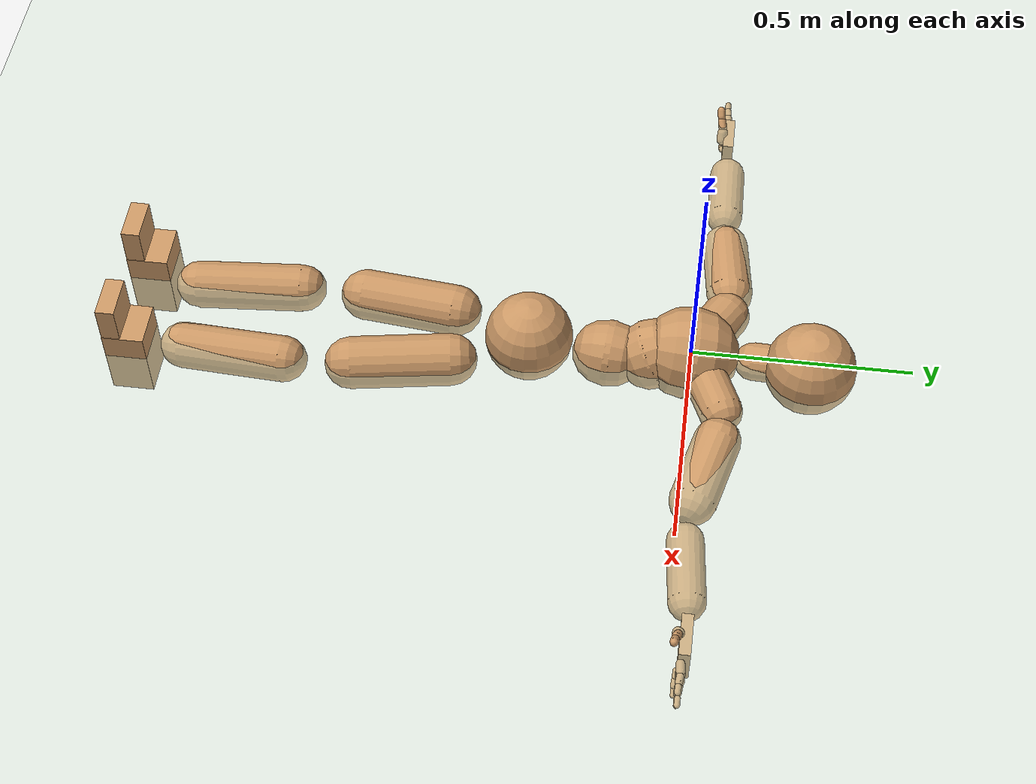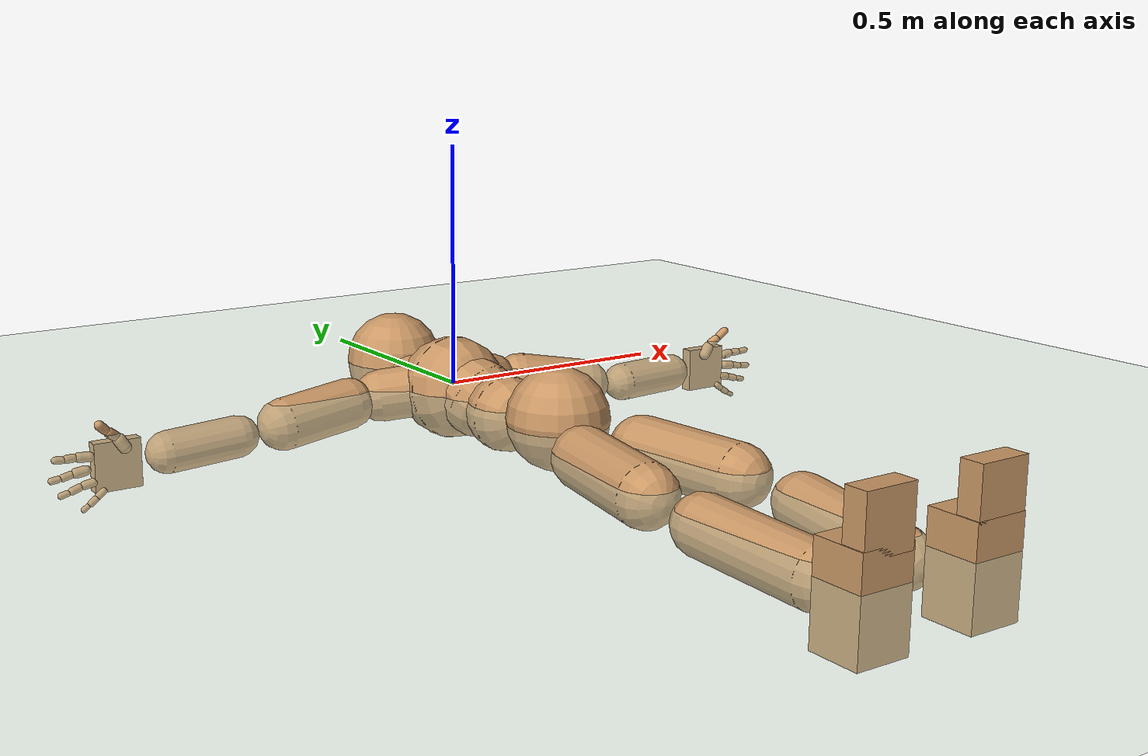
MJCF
<mujoco model="humanoid">
  <compiler coordinate="local"/>
  <default>
    <joint damping="0.0" armature="0.01" stiffness="0.0" limited="true"/>
    <geom conaffinity="1" condim="3" contype="7" margin="0.001" rgba="0.8 0.6 .4 1"/>
  </default>
  <asset>
    <texture type="skybox" builtin="gradient" rgb1=".4 .5 .6" rgb2="0 0 0" width="100" height="100"/>
    <texture builtin="flat" height="1278" mark="cross" markrgb="1 1 1" name="texgeom" random="0.01" rgb1="0.8 0.6 0.4" rgb2="0.8 0.6 0.4" type="cube" width="127"/>
    <texture builtin="checker" height="100" name="texplane" rgb1="0 0 0" rgb2="0.8 0.8 0.8" type="2d" width="100"/>
    <material name="MatPlane" reflectance="0.5" shininess="1" specular="1" texrepeat="60 60" texture="texplane"/>
    <material name="geom" texture="texgeom" texuniform="true"/>
  </asset>
  <worldbody>
    <light cutoff="100" diffuse="1 1 1" dir="-0 0 -1.3" directional="true" exponent="1" pos="0 0 1.3" specular=".1 .1 .1"/>
    <geom conaffinity="1" condim="3" name="floor" pos="0 0 0" rgba="0.8 0.9 0.8 1" size="100 100 .2" type="plane" material="MatPlane"/>
    <body name="Pelvis" pos="0.003 -0.3718 0.0077">
      <freejoint name="Pelvis"/>
      <geom type="sphere" contype="1" conaffinity="1" density="4629.6296296296305" size="0.1009" pos="0.0000 0.0000 0.0000" name="Pelvis"/>
      <body name="L_Hip" pos="0.0577 -0.0954 -0.0248">
        <joint name="L_Hip_x" type="hinge" pos="0 0 0" axis="1 0 0" user="250 2.5 1 500 10 2" armature="0.01" range="-90.0000 90.0000" damping="0" stiffness="0"/>
        <joint name="L_Hip_y" type="hinge" pos="0 0 0" axis="0 1 0" user="250 2.5 1 500 10 2" armature="0.01" range="-90.0000 90.0000" damping="0" stiffness="0"/>
        <joint name="L_Hip_z" type="hinge" pos="0 0 0" axis="0 0 1" user="250 2.5 1 500 10 2" armature="0.01" range="-90.0000 90.0000" damping="0" stiffness="0"/>
        <geom type="capsule" contype="1" conaffinity="1" density="2040.816327" fromto="0.0116 -0.0753 -0.0009 0.0464 -0.3011 -0.0038" size="0.0602" name="L_Hip"/>
        <body name="L_Knee" pos="0.058 -0.3764 -0.0047">
          <joint name="L_Knee_x" type="hinge" pos="0 0 0" axis="1 0 0" user="250 2.5 1 500 10 2" armature="0.01" range="-180.0000 180.0000" damping="0" stiffness="0"/>
          <joint name="L_Knee_y" type="hinge" pos="0 0 0" axis="0 1 0" user="250 2.5 1 500 10 2" armature="0.01" range="-5.6250 5.6250" damping="0" stiffness="0"/>
          <joint name="L_Knee_z" type="hinge" pos="0 0 0" axis="0 0 1" user="250 2.5 1 500 10 2" armature="0.01" range="-5.6250 5.6250" damping="0" stiffness="0"/>
          <geom type="capsule" contype="1" conaffinity="1" density="1234.567901" fromto="-0.0087 -0.0804 -0.0060 -0.0348 -0.3218 -0.0238" size="0.0535" name="L_Knee"/>
          <body name="L_Ankle" pos="-0.0435 -0.4022 -0.0298">
            <joint name="L_Ankle_x" type="hinge" pos="0 0 0" axis="1 0 0" user="150 2.5 1 500 10 2" armature="0.01" range="-90.0000 90.0000" damping="0" stiffness="0"/>
            <joint name="L_Ankle_y" type="hinge" pos="0 0 0" axis="0 1 0" user="150 2.5 1 500 10 2" armature="0.01" range="-90.0000 90.0000" damping="0" stiffness="0"/>
            <joint name="L_Ankle_z" type="hinge" pos="0 0 0" axis="0 0 1" user="150 2.5 1 500 10 2" armature="0.01" range="-90.0000 90.0000" damping="0" stiffness="0"/>
            <geom type="box" density="449.456054" pos="0.0420 -0.0290 0.0239" size="0.0513 0.0475 0.088" quat="1.0000 0.0000 0.0000 0.0000" name="L_Ankle"/>
            <body name="L_Toe" pos="0.0485 -0.0587 0.1214">
              <joint name="L_Toe_x" type="hinge" pos="0 0 0" axis="1 0 0" user="150 1 1 500 1 1" armature="0.01" range="-90.0000 90.0000" damping="0" stiffness="0"/>
              <joint name="L_Toe_y" type="hinge" pos="0 0 0" axis="0 1 0" user="150 1 1 500 1 1" armature="0.01" range="-45.0000 45.0000" damping="0" stiffness="0"/>
              <joint name="L_Toe_z" type="hinge" pos="0 0 0" axis="0 0 1" user="150 1 1 500 1 1" armature="0.01" range="-45.0000 45.0000" damping="0" stiffness="0"/>
              <geom type="box" density="422.237968" pos="-0.0065 0.0034 0.0266" size="0.0494 0.0212 0.0514" quat="1.0000 0.0000 0.0000 0.0000" name="L_Toe"/>
            </body>
          </body>
        </body>
      </body>
      <body name="R_Hip" pos="-0.0625 -0.1076 -0.0192">
        <joint name="R_Hip_x" type="hinge" pos="0 0 0" axis="1 0 0" user="250 2.5 1 500 10 2" armature="0.01" range="-90.0000 90.0000" damping="0" stiffness="0"/>
        <joint name="R_Hip_y" type="hinge" pos="0 0 0" axis="0 1 0" user="250 2.5 1 500 10 2" armature="0.01" range="-90.0000 90.0000" damping="0" stiffness="0"/>
        <joint name="R_Hip_z" type="hinge" pos="0 0 0" axis="0 0 1" user="250 2.5 1 500 10 2" armature="0.01" range="-90.0000 90.0000" damping="0" stiffness="0"/>
        <geom type="capsule" contype="1" conaffinity="1" density="2040.816327" fromto="-0.0095 -0.0718 -0.0026 -0.0379 -0.2871 -0.0103" size="0.0595" name="R_Hip"/>
        <body name="R_Knee" pos="-0.0474 -0.3589 -0.0129">
          <joint name="R_Knee_x" type="hinge" pos="0 0 0" axis="1 0 0" user="250 2.5 1 500 10 2" armature="0.01" range="-180.0000 180.0000" damping="0" stiffness="0"/>
          <joint name="R_Knee_y" type="hinge" pos="0 0 0" axis="0 1 0" user="250 2.5 1 500 10 2" armature="0.01" range="-5.6250 5.6250" damping="0" stiffness="0"/>
          <joint name="R_Knee_z" type="hinge" pos="0 0 0" axis="0 0 1" user="250 2.5 1 500 10 2" armature="0.01" range="-5.6250 5.6250" damping="0" stiffness="0"/>
          <geom type="capsule" contype="1" conaffinity="1" density="1234.567901" fromto="0.0030 -0.0820 -0.0036 0.0119 -0.3281 -0.0143" size="0.0551" name="R_Knee"/>
          <body name="R_Ankle" pos="0.0149 -0.4101 -0.0179">
            <joint name="R_Ankle_x" type="hinge" pos="0 0 0" axis="1 0 0" user="150 1 1 500 10 2" armature="0.01" range="-90.0000 90.0000" damping="0" stiffness="0"/>
            <joint name="R_Ankle_y" type="hinge" pos="0 0 0" axis="0 1 0" user="150 1 1 500 10 2" armature="0.01" range="-90.0000 90.0000" damping="0" stiffness="0"/>
            <joint name="R_Ankle_z" type="hinge" pos="0 0 0" axis="0 0 1" user="150 1 1 500 10 2" armature="0.01" range="-90.0000 90.0000" damping="0" stiffness="0"/>
            <geom type="box" density="449.457715" pos="-0.0250 -0.0265 0.0146" size="0.0513 0.0475 0.088" quat="1.0000 0.0000 0.0000 0.0000" name="R_Ankle"/>
            <body name="R_Toe" pos="-0.0397 -0.059 0.1223">
              <joint name="R_Toe_x" type="hinge" pos="0 0 0" axis="1 0 0" user="150 1 1 500 1 1" armature="0.01" range="-90.0000 90.0000" damping="0" stiffness="0"/>
              <joint name="R_Toe_y" type="hinge" pos="0 0 0" axis="0 1 0" user="150 1 1 500 1 1" armature="0.01" range="-45.0000 45.0000" damping="0" stiffness="0"/>
              <joint name="R_Toe_z" type="hinge" pos="0 0 0" axis="0 0 1" user="150 1 1 500 1 1" armature="0.01" range="-45.0000 45.0000" damping="0" stiffness="0"/>
              <geom type="box" density="422.240171" pos="0.0147 0.0062 0.0164" size="0.0494 0.0212 0.0514" quat="1.0000 0.0000 0.0000 0.0000" name="R_Toe"/>
            </body>
          </body>
        </body>
      </body>
      <body name="Torso" pos="-0.0029 0.1133 -0.0287">
        <joint name="Torso_x" type="hinge" pos="0 0 0" axis="1 0 0" user="500 5 1 500 10 2" armature="0.01" range="-60.0000 60.0000" damping="0" stiffness="0"/>
        <joint name="Torso_y" type="hinge" pos="0 0 0" axis="0 1 0" user="500 5 1 500 10 2" armature="0.01" range="-60.0000 60.0000" damping="0" stiffness="0"/>
        <joint name="Torso_z" type="hinge" pos="0 0 0" axis="0 0 1" user="500 5 1 500 10 2" armature="0.01" range="-60.0000 60.0000" damping="0" stiffness="0"/>
        <geom type="capsule" contype="1" conaffinity="1" density="2040.816327" fromto="0.0048 0.0637 -0.0026 0.0059 0.0778 -0.0031" size="0.0764" name="Torso"/>
        <body name="Spine" pos="0.0106 0.1415 -0.0057">
          <joint name="Spine_x" type="hinge" pos="0 0 0" axis="1 0 0" user="500 5 1 500 10 2" armature="0.01" range="-60.0000 60.0000" damping="0" stiffness="0"/>
          <joint name="Spine_y" type="hinge" pos="0 0 0" axis="0 1 0" user="500 5 1 500 10 2" armature="0.01" range="-60.0000 60.0000" damping="0" stiffness="0"/>
          <joint name="Spine_z" type="hinge" pos="0 0 0" axis="0 0 1" user="500 5 1 500 10 2" armature="0.01" range="-60.0000 60.0000" damping="0" stiffness="0"/>
          <geom type="capsule" contype="1" conaffinity="1" density="2040.816327" fromto="-0.0053 0.0255 0.0126 -0.0065 0.0312 0.0154" size="0.0804" name="Spine"/>
          <body name="Chest" pos="-0.0119 0.0567 0.028">
            <joint name="Chest_x" type="hinge" pos="0 0 0" axis="1 0 0" user="500 5 1 500 10 2" armature="0.01" range="-60.0000 60.0000" damping="0" stiffness="0"/>
            <joint name="Chest_y" type="hinge" pos="0 0 0" axis="0 1 0" user="500 5 1 500 10 2" armature="0.01" range="-60.0000 60.0000" damping="0" stiffness="0"/>
            <joint name="Chest_z" type="hinge" pos="0 0 0" axis="0 0 1" user="500 5 1 500 10 2" armature="0.01" range="-60.0000 60.0000" damping="0" stiffness="0"/>
            <geom type="capsule" contype="1" conaffinity="1" density="2040.816327" fromto="-0.0022 0.0519 -0.0069 -0.0027 0.0635 -0.0084" size="0.1061" name="Chest"/>
            <body name="Neck" pos="-0.0129 0.1708 -0.0284">
              <joint name="Neck_x" type="hinge" pos="0 0 0" axis="1 0 0" user="150 1 1 250 50 4" armature="0.01" range="-180.0000 180.0000" damping="0" stiffness="0"/>
              <joint name="Neck_y" type="hinge" pos="0 0 0" axis="0 1 0" user="150 1 1 250 50 4" armature="0.01" range="-180.0000 180.0000" damping="0" stiffness="0"/>
              <joint name="Neck_z" type="hinge" pos="0 0 0" axis="0 0 1" user="150 1 1 250 50 4" armature="0.01" range="-180.0000 180.0000" damping="0" stiffness="0"/>
              <geom type="capsule" contype="1" conaffinity="1" density="1000" fromto="0.0052 0.0321 0.0049 0.0209 0.1283 0.0196" size="0.0437" name="Neck"/>
              <body name="Head" pos="0.0261 0.1603 0.0245">
                <joint name="Head_x" type="hinge" pos="0 0 0" axis="1 0 0" user="150 1 1 250 50 4" armature="0.01" range="-90.0000 90.0000" damping="0" stiffness="0"/>
                <joint name="Head_y" type="hinge" pos="0 0 0" axis="0 1 0" user="150 1 1 250 50 4" armature="0.01" range="-90.0000 90.0000" damping="0" stiffness="0"/>
                <joint name="Head_z" type="hinge" pos="0 0 0" axis="0 0 1" user="150 1 1 250 50 4" armature="0.01" range="-90.0000 90.0000" damping="0" stiffness="0"/>
                <geom type="sphere" contype="1" conaffinity="1" density="1000" size="0.1042" pos="0.0000 0.0000 0.0000" name="Head"/>
              </body>
            </body>
            <body name="L_Thorax" pos="0.0472 0.0881 -0.0054">
              <joint name="L_Thorax_x" type="hinge" pos="0 0 0" axis="1 0 0" user="200 2 1 500 50 4" armature="0.01" range="-180.0000 180.0000" damping="0" stiffness="0"/>
              <joint name="L_Thorax_y" type="hinge" pos="0 0 0" axis="0 1 0" user="200 2 1 500 50 4" armature="0.01" range="-180.0000 180.0000" damping="0" stiffness="0"/>
              <joint name="L_Thorax_z" type="hinge" pos="0 0 0" axis="0 0 1" user="200 2 1 500 50 4" armature="0.01" range="-180.0000 180.0000" damping="0" stiffness="0"/>
              <geom type="capsule" contype="1" conaffinity="1" density="1000" fromto="0.0246 0.0122 -0.0037 0.0982 0.0489 -0.0150" size="0.05" name="L_Thorax"/>
              <body name="L_Shoulder" pos="0.1228 0.0611 -0.0187">
                <joint name="L_Shoulder_x" type="hinge" pos="0 0 0" axis="1 0 0" user="200 2 1 500 50 4" armature="0.01" range="-180.0000 180.0000" damping="0" stiffness="0"/>
                <joint name="L_Shoulder_y" type="hinge" pos="0 0 0" axis="0 1 0" user="200 2 1 500 50 4" armature="0.01" range="-180.0000 180.0000" damping="0" stiffness="0"/>
                <joint name="L_Shoulder_z" type="hinge" pos="0 0 0" axis="0 0 1" user="200 2 1 500 50 4" armature="0.01" range="-180.0000 180.0000" damping="0" stiffness="0"/>
                <geom type="capsule" contype="1" conaffinity="1" density="1000" fromto="0.0497 -0.0138 -0.0084 0.1988 -0.0553 -0.0337" size="0.0536" name="L_Shoulder"/>
                <body name="L_Elbow" pos="0.2485 -0.0691 -0.0421">
                  <joint name="L_Elbow_x" type="hinge" pos="0 0 0" axis="1 0 0" user="150 1 1 150 10 2" armature="0.01" range="-720.0000 720.0000" damping="0" stiffness="0"/>
                  <joint name="L_Elbow_y" type="hinge" pos="0 0 0" axis="0 1 0" user="150 1 1 150 10 2" armature="0.01" range="-720.0000 720.0000" damping="0" stiffness="0"/>
                  <joint name="L_Elbow_z" type="hinge" pos="0 0 0" axis="0 0 1" user="150 1 1 150 10 2" armature="0.01" range="-720.0000 720.0000" damping="0" stiffness="0"/>
                  <geom type="capsule" contype="1" conaffinity="1" density="1000" fromto="0.0505 0.0050 -0.0000 0.2020 0.0199 -0.0002" size="0.0417" name="L_Elbow"/>
                  <body name="L_Wrist" pos="0.2526 0.0248 -0.0002">
                    <joint name="L_Wrist_x" type="hinge" pos="0 0 0" axis="1 0 0" user="100 1 1 150 1 1" armature="0.01" range="-180.0000 180.0000" damping="0" stiffness="0"/>
                    <joint name="L_Wrist_y" type="hinge" pos="0 0 0" axis="0 1 0" user="100 1 1 150 1 1" armature="0.01" range="-180.0000 180.0000" damping="0" stiffness="0"/>
                    <joint name="L_Wrist_z" type="hinge" pos="0 0 0" axis="0 0 1" user="100 1 1 150 1 1" armature="0.01" range="-180.0000 180.0000" damping="0" stiffness="0"/>
                    <geom type="box" density="1217.553962" pos="0.0533 -0.0011 -0.0027" size="0.0492 0.0127 0.0481" quat="1.0000 0.0000 0.0000 0.0000" name="L_Wrist"/>
                    <body name="L_Index1" pos="0.1036 -0.0081 0.0207">
                      <joint name="L_Index1_x" type="hinge" pos="0 0 0" axis="1 0 0" user="100 10 1 150" armature="0.01" range="-180.0000 180.0000" damping="0" stiffness="0"/>
                      <joint name="L_Index1_y" type="hinge" pos="0 0 0" axis="0 1 0" user="100 10 1 150" armature="0.01" range="-180.0000 180.0000" damping="0" stiffness="0"/>
                      <joint name="L_Index1_z" type="hinge" pos="0 0 0" axis="0 0 1" user="100 10 1 150" armature="0.01" range="-180.0000 180.0000" damping="0" stiffness="0"/>
                      <geom type="capsule" contype="1" conaffinity="1" density="1000" fromto="0.0065 0.0005 0.0006 0.0261 0.0019 0.0024" size="0.0096" name="L_Index1"/>
                      <body name="L_Index2" pos="0.0326 0.0024 0.003">
                        <joint name="L_Index2_x" type="hinge" pos="0 0 0" axis="1 0 0" user="100 10 1 150" armature="0.01" range="-180.0000 180.0000" damping="0" stiffness="0"/>
                        <joint name="L_Index2_y" type="hinge" pos="0 0 0" axis="0 1 0" user="100 10 1 150" armature="0.01" range="-180.0000 180.0000" damping="0" stiffness="0"/>
                        <joint name="L_Index2_z" type="hinge" pos="0 0 0" axis="0 0 1" user="100 10 1 150" armature="0.01" range="-180.0000 180.0000" damping="0" stiffness="0"/>
                        <geom type="capsule" contype="1" conaffinity="1" density="1000" fromto="0.0046 -0.0005 -0.0000 0.0184 -0.0020 -0.0001" size="0.0079" name="L_Index2"/>
                        <body name="L_Index3" pos="0.0229 -0.0025 -0.0002">
                          <joint name="L_Index3_x" type="hinge" pos="0 0 0" axis="1 0 0" user="100 10 1 150" armature="0.01" range="-180.0000 180.0000" damping="0" stiffness="0"/>
                          <joint name="L_Index3_y" type="hinge" pos="0 0 0" axis="0 1 0" user="100 10 1 150" armature="0.01" range="-180.0000 180.0000" damping="0" stiffness="0"/>
                          <joint name="L_Index3_z" type="hinge" pos="0 0 0" axis="0 0 1" user="100 10 1 150" armature="0.01" range="-180.0000 180.0000" damping="0" stiffness="0"/>
                          <geom type="capsule" contype="1" conaffinity="1" density="1000" fromto="0.0050 -0.0001 0.0004 0.0200 -0.0004 0.0015" size="0.0067" name="L_Index3"/>
                        </body>
                      </body>
                    </body>
                    <body name="L_Middle1" pos="0.1113 -0.0057 -0.0036">
                      <joint name="L_Middle1_x" type="hinge" pos="0 0 0" axis="1 0 0" user="100 10 1 150" armature="0.01" range="-180.0000 180.0000" damping="0" stiffness="0"/>
                      <joint name="L_Middle1_y" type="hinge" pos="0 0 0" axis="0 1 0" user="100 10 1 150" armature="0.01" range="-180.0000 180.0000" damping="0" stiffness="0"/>
                      <joint name="L_Middle1_z" type="hinge" pos="0 0 0" axis="0 0 1" user="100 10 1 150" armature="0.01" range="-180.0000 180.0000" damping="0" stiffness="0"/>
                      <geom type="capsule" contype="1" conaffinity="1" density="1000" fromto="0.0063 0.0002 -0.0008 0.0251 0.0006 -0.0033" size="0.0098" name="L_Middle1"/>
                      <body name="L_Middle2" pos="0.0313 0.0008 -0.0041">
                        <joint name="L_Middle2_x" type="hinge" pos="0 0 0" axis="1 0 0" user="100 10 1 150" armature="0.01" range="-180.0000 180.0000" damping="0" stiffness="0"/>
                        <joint name="L_Middle2_y" type="hinge" pos="0 0 0" axis="0 1 0" user="100 10 1 150" armature="0.01" range="-180.0000 180.0000" damping="0" stiffness="0"/>
                        <joint name="L_Middle2_z" type="hinge" pos="0 0 0" axis="0 0 1" user="100 10 1 150" armature="0.01" range="-180.0000 180.0000" damping="0" stiffness="0"/>
                        <geom type="capsule" contype="1" conaffinity="1" density="1000" fromto="0.0048 -0.0004 -0.0009 0.0192 -0.0017 -0.0034" size="0.0073" name="L_Middle2"/>
                        <body name="L_Middle3" pos="0.024 -0.0022 -0.0043">
                          <joint name="L_Middle3_x" type="hinge" pos="0 0 0" axis="1 0 0" user="100 10 1 150" armature="0.01" range="-180.0000 180.0000" damping="0" stiffness="0"/>
                          <joint name="L_Middle3_y" type="hinge" pos="0 0 0" axis="0 1 0" user="100 10 1 150" armature="0.01" range="-180.0000 180.0000" damping="0" stiffness="0"/>
                          <joint name="L_Middle3_z" type="hinge" pos="0 0 0" axis="0 0 1" user="100 10 1 150" armature="0.01" range="-180.0000 180.0000" damping="0" stiffness="0"/>
                          <geom type="capsule" contype="1" conaffinity="1" density="1000" fromto="0.0052 -0.0000 -0.0005 0.0208 -0.0001 -0.0018" size="0.0064" name="L_Middle3"/>
                        </body>
                      </body>
                    </body>
                    <body name="L_Pinky1" pos="0.0854 -0.014 -0.0453">
                      <joint name="L_Pinky1_x" type="hinge" pos="0 0 0" axis="1 0 0" user="100 10 1 150" armature="0.01" range="-180.0000 180.0000" damping="0" stiffness="0"/>
                      <joint name="L_Pinky1_y" type="hinge" pos="0 0 0" axis="0 1 0" user="100 10 1 150" armature="0.01" range="-180.0000 180.0000" damping="0" stiffness="0"/>
                      <joint name="L_Pinky1_z" type="hinge" pos="0 0 0" axis="0 0 1" user="100 10 1 150" armature="0.01" range="-180.0000 180.0000" damping="0" stiffness="0"/>
                      <geom type="capsule" contype="1" conaffinity="1" density="1000" fromto="0.0032 -0.0003 -0.0025 0.0130 -0.0010 -0.0099" size="0.007" name="L_Pinky1"/>
                      <body name="L_Pinky2" pos="0.0162 -0.0013 -0.0124">
                        <joint name="L_Pinky2_x" type="hinge" pos="0 0 0" axis="1 0 0" user="100 10 1 150" armature="0.01" range="-180.0000 180.0000" damping="0" stiffness="0"/>
                        <joint name="L_Pinky2_y" type="hinge" pos="0 0 0" axis="0 1 0" user="100 10 1 150" armature="0.01" range="-180.0000 180.0000" damping="0" stiffness="0"/>
                        <joint name="L_Pinky2_z" type="hinge" pos="0 0 0" axis="0 0 1" user="100 10 1 150" armature="0.01" range="-180.0000 180.0000" damping="0" stiffness="0"/>
                        <geom type="capsule" contype="1" conaffinity="1" density="1000" fromto="0.0032 -0.0004 -0.0023 0.0129 -0.0015 -0.0091" size="0.0068" name="L_Pinky2"/>
                        <body name="L_Pinky3" pos="0.0161 -0.0019 -0.0114">
                          <joint name="L_Pinky3_x" type="hinge" pos="0 0 0" axis="1 0 0" user="100 10 1 150" armature="0.01" range="-180.0000 180.0000" damping="0" stiffness="0"/>
                          <joint name="L_Pinky3_y" type="hinge" pos="0 0 0" axis="0 1 0" user="100 10 1 150" armature="0.01" range="-180.0000 180.0000" damping="0" stiffness="0"/>
                          <joint name="L_Pinky3_z" type="hinge" pos="0 0 0" axis="0 0 1" user="100 10 1 150" armature="0.01" range="-180.0000 180.0000" damping="0" stiffness="0"/>
                          <geom type="capsule" contype="1" conaffinity="1" density="1000" fromto="0.0036 0.0000 -0.0019 0.0145 0.0001 -0.0075" size="0.0051" name="L_Pinky3"/>
                        </body>
                      </body>
                    </body>
                    <body name="L_Ring1" pos="0.0992 -0.0086 -0.0281">
                      <joint name="L_Ring1_x" type="hinge" pos="0 0 0" axis="1 0 0" user="100 10 1 150" armature="0.01" range="-180.0000 180.0000" damping="0" stiffness="0"/>
                      <joint name="L_Ring1_y" type="hinge" pos="0 0 0" axis="0 1 0" user="100 10 1 150" armature="0.01" range="-180.0000 180.0000" damping="0" stiffness="0"/>
                      <joint name="L_Ring1_z" type="hinge" pos="0 0 0" axis="0 0 1" user="100 10 1 150" armature="0.01" range="-180.0000 180.0000" damping="0" stiffness="0"/>
                      <geom type="capsule" contype="1" conaffinity="1" density="1000" fromto="0.0058 0.0003 -0.0011 0.0231 0.0012 -0.0043" size="0.0083" name="L_Ring1"/>
                      <body name="L_Ring2" pos="0.0289 0.0015 -0.0054">
                        <joint name="L_Ring2_x" type="hinge" pos="0 0 0" axis="1 0 0" user="100 10 1 150" armature="0.01" range="-180.0000 180.0000" damping="0" stiffness="0"/>
                        <joint name="L_Ring2_y" type="hinge" pos="0 0 0" axis="0 1 0" user="100 10 1 150" armature="0.01" range="-180.0000 180.0000" damping="0" stiffness="0"/>
                        <joint name="L_Ring2_z" type="hinge" pos="0 0 0" axis="0 0 1" user="100 10 1 150" armature="0.01" range="-180.0000 180.0000" damping="0" stiffness="0"/>
                        <geom type="capsule" contype="1" conaffinity="1" density="1000" fromto="0.0047 -0.0003 -0.0015 0.0187 -0.0013 -0.0058" size="0.0077" name="L_Ring2"/>
                        <body name="L_Ring3" pos="0.0234 -0.0016 -0.0073">
                          <joint name="L_Ring3_x" type="hinge" pos="0 0 0" axis="1 0 0" user="100 10 1 150" armature="0.01" range="-180.0000 180.0000" damping="0" stiffness="0"/>
                          <joint name="L_Ring3_y" type="hinge" pos="0 0 0" axis="0 1 0" user="100 10 1 150" armature="0.01" range="-180.0000 180.0000" damping="0" stiffness="0"/>
                          <joint name="L_Ring3_z" type="hinge" pos="0 0 0" axis="0 0 1" user="100 10 1 150" armature="0.01" range="-180.0000 180.0000" damping="0" stiffness="0"/>
                          <geom type="capsule" contype="1" conaffinity="1" density="1000" fromto="0.0051 0.0001 -0.0011 0.0203 0.0003 -0.0042" size="0.006" name="L_Ring3"/>
                        </body>
                      </body>
                    </body>
                    <body name="L_Thumb1" pos="0.0408 -0.0183 0.0274">
                      <joint name="L_Thumb1_x" type="hinge" pos="0 0 0" axis="1 0 0" user="100 10 1 150" armature="0.01" range="-180.0000 180.0000" damping="0" stiffness="0"/>
                      <joint name="L_Thumb1_y" type="hinge" pos="0 0 0" axis="0 1 0" user="100 10 1 150" armature="0.01" range="-180.0000 180.0000" damping="0" stiffness="0"/>
                      <joint name="L_Thumb1_z" type="hinge" pos="0 0 0" axis="0 0 1" user="100 10 1 150" armature="0.01" range="-180.0000 180.0000" damping="0" stiffness="0"/>
                      <geom type="capsule" contype="1" conaffinity="1" density="1000" fromto="0.0035 0.0002 0.0052 0.0138 0.0010 0.0208" size="0.0125" name="L_Thumb1"/>
                      <body name="L_Thumb2" pos="0.0173 0.0012 0.026">
                        <joint name="L_Thumb2_x" type="hinge" pos="0 0 0" axis="1 0 0" user="100 10 1 150" armature="0.01" range="-180.0000 180.0000" damping="0" stiffness="0"/>
                        <joint name="L_Thumb2_y" type="hinge" pos="0 0 0" axis="0 1 0" user="100 10 1 150" armature="0.01" range="-180.0000 180.0000" damping="0" stiffness="0"/>
                        <joint name="L_Thumb2_z" type="hinge" pos="0 0 0" axis="0 0 1" user="100 10 1 150" armature="0.01" range="-180.0000 180.0000" damping="0" stiffness="0"/>
                        <geom type="capsule" contype="1" conaffinity="1" density="1000" fromto="0.0042 -0.0011 0.0032 0.0168 -0.0043 0.0128" size="0.01" name="L_Thumb2"/>
                        <body name="L_Thumb3" pos="0.0209 -0.0054 0.0159">
                          <joint name="L_Thumb3_x" type="hinge" pos="0 0 0" axis="1 0 0" user="100 10 1 150" armature="0.01" range="-180.0000 180.0000" damping="0" stiffness="0"/>
                          <joint name="L_Thumb3_y" type="hinge" pos="0 0 0" axis="0 1 0" user="100 10 1 150" armature="0.01" range="-180.0000 180.0000" damping="0" stiffness="0"/>
                          <joint name="L_Thumb3_z" type="hinge" pos="0 0 0" axis="0 0 1" user="100 10 1 150" armature="0.01" range="-180.0000 180.0000" damping="0" stiffness="0"/>
                          <geom type="capsule" contype="1" conaffinity="1" density="1000" fromto="0.0046 -0.0007 0.0036 0.0184 -0.0027 0.0144" size="0.0091" name="L_Thumb3"/>
                        </body>
                      </body>
                    </body>
                  </body>
                </body>
              </body>
            </body>
            <body name="R_Thorax" pos="-0.0492 0.0874 -0.0119">
              <joint name="R_Thorax_x" type="hinge" pos="0 0 0" axis="1 0 0" user="200 2 1 150 10 2" armature="0.01" range="-180.0000 180.0000" damping="0" stiffness="0"/>
              <joint name="R_Thorax_y" type="hinge" pos="0 0 0" axis="0 1 0" user="200 2 1 150 10 2" armature="0.01" range="-180.0000 180.0000" damping="0" stiffness="0"/>
              <joint name="R_Thorax_z" type="hinge" pos="0 0 0" axis="0 0 1" user="200 2 1 150 10 2" armature="0.01" range="-180.0000 180.0000" damping="0" stiffness="0"/>
              <geom type="capsule" contype="1" conaffinity="1" density="1000" fromto="-0.0212 0.0112 -0.0030 -0.0848 0.0447 -0.0122" size="0.055" name="R_Thorax"/>
              <body name="R_Shoulder" pos="-0.106 0.0559 -0.0152">
                <joint name="R_Shoulder_x" type="hinge" pos="0 0 0" axis="1 0 0" user="200 2 1 250 10 2" armature="0.01" range="-180.0000 180.0000" damping="0" stiffness="0"/>
                <joint name="R_Shoulder_y" type="hinge" pos="0 0 0" axis="0 1 0" user="200 2 1 250 10 2" armature="0.01" range="-180.0000 180.0000" damping="0" stiffness="0"/>
                <joint name="R_Shoulder_z" type="hinge" pos="0 0 0" axis="0 0 1" user="200 2 1 250 10 2" armature="0.01" range="-180.0000 180.0000" damping="0" stiffness="0"/>
                <geom type="capsule" contype="1" conaffinity="1" density="1000" fromto="-0.0531 -0.0063 -0.0053 -0.2125 -0.0251 -0.0212" size="0.0535" name="R_Shoulder"/>
                <body name="R_Elbow" pos="-0.2656 -0.0314 -0.0264">
                  <joint name="R_Elbow_x" type="hinge" pos="0 0 0" axis="1 0 0" user="150 1 1 150 10 2" armature="0.01" range="-720.0000 720.0000" damping="0" stiffness="0"/>
                  <joint name="R_Elbow_y" type="hinge" pos="0 0 0" axis="0 1 0" user="150 1 1 150 10 2" armature="0.01" range="-720.0000 720.0000" damping="0" stiffness="0"/>
                  <joint name="R_Elbow_z" type="hinge" pos="0 0 0" axis="0 0 1" user="150 1 1 150 10 2" armature="0.01" range="-720.0000 720.0000" damping="0" stiffness="0"/>
                  <geom type="capsule" contype="1" conaffinity="1" density="1000" fromto="-0.0500 -0.0008 -0.0026 -0.1998 -0.0031 -0.0104" size="0.042" name="R_Elbow"/>
                  <body name="R_Wrist" pos="-0.2498 -0.0038 -0.013">
                    <joint name="R_Wrist_x" type="hinge" pos="0 0 0" axis="1 0 0" user="100 1 1 150 1 1" armature="0.01" range="-180.0000 180.0000" damping="0" stiffness="0"/>
                    <joint name="R_Wrist_y" type="hinge" pos="0 0 0" axis="0 1 0" user="100 1 1 150 1 1" armature="0.01" range="-180.0000 180.0000" damping="0" stiffness="0"/>
                    <joint name="R_Wrist_z" type="hinge" pos="0 0 0" axis="0 0 1" user="100 1 1 150 1 1" armature="0.01" range="-180.0000 180.0000" damping="0" stiffness="0"/>
                    <geom type="box" density="1244.795259" pos="-0.0545 -0.0043 -0.0026" size="0.0464 0.0127 0.0481" quat="1.0000 0.0000 0.0000 0.0000" name="R_Wrist"/>
                    <body name="R_Index1" pos="-0.1016 -0.0113 0.0209">
                      <joint name="R_Index1_x" type="hinge" pos="0 0 0" axis="1 0 0" user="100 10 1 150" armature="0.01" range="-180.0000 180.0000" damping="0" stiffness="0"/>
                      <joint name="R_Index1_y" type="hinge" pos="0 0 0" axis="0 1 0" user="100 10 1 150" armature="0.01" range="-180.0000 180.0000" damping="0" stiffness="0"/>
                      <joint name="R_Index1_z" type="hinge" pos="0 0 0" axis="0 0 1" user="100 10 1 150" armature="0.01" range="-180.0000 180.0000" damping="0" stiffness="0"/>
                      <geom type="capsule" contype="1" conaffinity="1" density="1000" fromto="-0.0065 0.0005 0.0006 -0.0261 0.0019 0.0024" size="0.0096" name="R_Index1"/>
                      <body name="R_Index2" pos="-0.0326 0.0024 0.003">
                        <joint name="R_Index2_x" type="hinge" pos="0 0 0" axis="1 0 0" user="100 10 1 150" armature="0.01" range="-180.0000 180.0000" damping="0" stiffness="0"/>
                        <joint name="R_Index2_y" type="hinge" pos="0 0 0" axis="0 1 0" user="100 10 1 150" armature="0.01" range="-180.0000 180.0000" damping="0" stiffness="0"/>
                        <joint name="R_Index2_z" type="hinge" pos="0 0 0" axis="0 0 1" user="100 10 1 150" armature="0.01" range="-180.0000 180.0000" damping="0" stiffness="0"/>
                        <geom type="capsule" contype="1" conaffinity="1" density="1000" fromto="-0.0046 -0.0005 -0.0000 -0.0184 -0.0020 -0.0001" size="0.0079" name="R_Index2"/>
                        <body name="R_Index3" pos="-0.0229 -0.0025 -0.0002">
                          <joint name="R_Index3_x" type="hinge" pos="0 0 0" axis="1 0 0" user="100 10 1 150" armature="0.01" range="-180.0000 180.0000" damping="0" stiffness="0"/>
                          <joint name="R_Index3_y" type="hinge" pos="0 0 0" axis="0 1 0" user="100 10 1 150" armature="0.01" range="-180.0000 180.0000" damping="0" stiffness="0"/>
                          <joint name="R_Index3_z" type="hinge" pos="0 0 0" axis="0 0 1" user="100 10 1 150" armature="0.01" range="-180.0000 180.0000" damping="0" stiffness="0"/>
                          <geom type="capsule" contype="1" conaffinity="1" density="1000" fromto="-0.0042 -0.0001 0.0004 -0.0168 -0.0004 0.0015" size="0.007" name="R_Index3"/>
                        </body>
                      </body>
                    </body>
                    <body name="R_Middle1" pos="-0.1094 -0.0089 -0.0035">
                      <joint name="R_Middle1_x" type="hinge" pos="0 0 0" axis="1 0 0" user="100 10 1 150" armature="0.01" range="-180.0000 180.0000" damping="0" stiffness="0"/>
                      <joint name="R_Middle1_y" type="hinge" pos="0 0 0" axis="0 1 0" user="100 10 1 150" armature="0.01" range="-180.0000 180.0000" damping="0" stiffness="0"/>
                      <joint name="R_Middle1_z" type="hinge" pos="0 0 0" axis="0 0 1" user="100 10 1 150" armature="0.01" range="-180.0000 180.0000" damping="0" stiffness="0"/>
                      <geom type="capsule" contype="1" conaffinity="1" density="1000" fromto="-0.0063 0.0002 -0.0008 -0.0251 0.0006 -0.0033" size="0.0098" name="R_Middle1"/>
                      <body name="R_Middle2" pos="-0.0313 0.0008 -0.0041">
                        <joint name="R_Middle2_x" type="hinge" pos="0 0 0" axis="1 0 0" user="100 10 1 150" armature="0.01" range="-180.0000 180.0000" damping="0" stiffness="0"/>
                        <joint name="R_Middle2_y" type="hinge" pos="0 0 0" axis="0 1 0" user="100 10 1 150" armature="0.01" range="-180.0000 180.0000" damping="0" stiffness="0"/>
                        <joint name="R_Middle2_z" type="hinge" pos="0 0 0" axis="0 0 1" user="100 10 1 150" armature="0.01" range="-180.0000 180.0000" damping="0" stiffness="0"/>
                        <geom type="capsule" contype="1" conaffinity="1" density="1000" fromto="-0.0048 -0.0004 -0.0009 -0.0192 -0.0017 -0.0034" size="0.0073" name="R_Middle2"/>
                        <body name="R_Middle3" pos="-0.024 -0.0022 -0.0043">
                          <joint name="R_Middle3_x" type="hinge" pos="0 0 0" axis="1 0 0" user="100 10 1 150" armature="0.01" range="-180.0000 180.0000" damping="0" stiffness="0"/>
                          <joint name="R_Middle3_y" type="hinge" pos="0 0 0" axis="0 1 0" user="100 10 1 150" armature="0.01" range="-180.0000 180.0000" damping="0" stiffness="0"/>
                          <joint name="R_Middle3_z" type="hinge" pos="0 0 0" axis="0 0 1" user="100 10 1 150" armature="0.01" range="-180.0000 180.0000" damping="0" stiffness="0"/>
                          <geom type="capsule" contype="1" conaffinity="1" density="1000" fromto="-0.0044 -0.0000 -0.0005 -0.0176 -0.0001 -0.0018" size="0.0066" name="R_Middle3"/>
                        </body>
                      </body>
                    </body>
                    <body name="R_Pinky1" pos="-0.0834 -0.0172 -0.0452">
                      <joint name="R_Pinky1_x" type="hinge" pos="0 0 0" axis="1 0 0" user="100 10 1 150" armature="0.01" range="-180.0000 180.0000" damping="0" stiffness="0"/>
                      <joint name="R_Pinky1_y" type="hinge" pos="0 0 0" axis="0 1 0" user="100 10 1 150" armature="0.01" range="-180.0000 180.0000" damping="0" stiffness="0"/>
                      <joint name="R_Pinky1_z" type="hinge" pos="0 0 0" axis="0 0 1" user="100 10 1 150" armature="0.01" range="-180.0000 180.0000" damping="0" stiffness="0"/>
                      <geom type="capsule" contype="1" conaffinity="1" density="1000" fromto="-0.0032 -0.0003 -0.0025 -0.0130 -0.0010 -0.0099" size="0.007" name="R_Pinky1"/>
                      <body name="R_Pinky2" pos="-0.0162 -0.0013 -0.0124">
                        <joint name="R_Pinky2_x" type="hinge" pos="0 0 0" axis="1 0 0" user="100 10 1 150" armature="0.01" range="-180.0000 180.0000" damping="0" stiffness="0"/>
                        <joint name="R_Pinky2_y" type="hinge" pos="0 0 0" axis="0 1 0" user="100 10 1 150" armature="0.01" range="-180.0000 180.0000" damping="0" stiffness="0"/>
                        <joint name="R_Pinky2_z" type="hinge" pos="0 0 0" axis="0 0 1" user="100 10 1 150" armature="0.01" range="-180.0000 180.0000" damping="0" stiffness="0"/>
                        <geom type="capsule" contype="1" conaffinity="1" density="1000" fromto="-0.0032 -0.0004 -0.0023 -0.0129 -0.0015 -0.0091" size="0.0068" name="R_Pinky2"/>
                        <body name="R_Pinky3" pos="-0.0161 -0.0019 -0.0114">
                          <joint name="R_Pinky3_x" type="hinge" pos="0 0 0" axis="1 0 0" user="100 10 1 150" armature="0.01" range="-180.0000 180.0000" damping="0" stiffness="0"/>
                          <joint name="R_Pinky3_y" type="hinge" pos="0 0 0" axis="0 1 0" user="100 10 1 150" armature="0.01" range="-180.0000 180.0000" damping="0" stiffness="0"/>
                          <joint name="R_Pinky3_z" type="hinge" pos="0 0 0" axis="0 0 1" user="100 10 1 150" armature="0.01" range="-180.0000 180.0000" damping="0" stiffness="0"/>
                          <geom type="capsule" contype="1" conaffinity="1" density="1000" fromto="-0.0028 0.0000 -0.0019 -0.0113 0.0001 -0.0075" size="0.0054" name="R_Pinky3"/>
                        </body>
                      </body>
                    </body>
                    <body name="R_Ring1" pos="-0.0972 -0.0118 -0.028">
                      <joint name="R_Ring1_x" type="hinge" pos="0 0 0" axis="1 0 0" user="100 10 1 150" armature="0.01" range="-180.0000 180.0000" damping="0" stiffness="0"/>
                      <joint name="R_Ring1_y" type="hinge" pos="0 0 0" axis="0 1 0" user="100 10 1 150" armature="0.01" range="-180.0000 180.0000" damping="0" stiffness="0"/>
                      <joint name="R_Ring1_z" type="hinge" pos="0 0 0" axis="0 0 1" user="100 10 1 150" armature="0.01" range="-180.0000 180.0000" damping="0" stiffness="0"/>
                      <geom type="capsule" contype="1" conaffinity="1" density="1000" fromto="-0.0058 0.0003 -0.0011 -0.0231 0.0012 -0.0043" size="0.0083" name="R_Ring1"/>
                      <body name="R_Ring2" pos="-0.0289 0.0015 -0.0054">
                        <joint name="R_Ring2_x" type="hinge" pos="0 0 0" axis="1 0 0" user="100 10 1 150" armature="0.01" range="-180.0000 180.0000" damping="0" stiffness="0"/>
                        <joint name="R_Ring2_y" type="hinge" pos="0 0 0" axis="0 1 0" user="100 10 1 150" armature="0.01" range="-180.0000 180.0000" damping="0" stiffness="0"/>
                        <joint name="R_Ring2_z" type="hinge" pos="0 0 0" axis="0 0 1" user="100 10 1 150" armature="0.01" range="-180.0000 180.0000" damping="0" stiffness="0"/>
                        <geom type="capsule" contype="1" conaffinity="1" density="1000" fromto="-0.0047 -0.0003 -0.0015 -0.0187 -0.0013 -0.0058" size="0.0077" name="R_Ring2"/>
                        <body name="R_Ring3" pos="-0.0234 -0.0016 -0.0073">
                          <joint name="R_Ring3_x" type="hinge" pos="0 0 0" axis="1 0 0" user="100 10 1 150" armature="0.01" range="-180.0000 180.0000" damping="0" stiffness="0"/>
                          <joint name="R_Ring3_y" type="hinge" pos="0 0 0" axis="0 1 0" user="100 10 1 150" armature="0.01" range="-180.0000 180.0000" damping="0" stiffness="0"/>
                          <joint name="R_Ring3_z" type="hinge" pos="0 0 0" axis="0 0 1" user="100 10 1 150" armature="0.01" range="-180.0000 180.0000" damping="0" stiffness="0"/>
                          <geom type="capsule" contype="1" conaffinity="1" density="1000" fromto="-0.0043 0.0001 -0.0011 -0.0171 0.0003 -0.0042" size="0.0062" name="R_Ring3"/>
                        </body>
                      </body>
                    </body>
                    <body name="R_Thumb1" pos="-0.0388 -0.0215 0.0276">
                      <joint name="R_Thumb1_x" type="hinge" pos="0 0 0" axis="1 0 0" user="100 10 1 150" armature="0.01" range="-180.0000 180.0000" damping="0" stiffness="0"/>
                      <joint name="R_Thumb1_y" type="hinge" pos="0 0 0" axis="0 1 0" user="100 10 1 150" armature="0.01" range="-180.0000 180.0000" damping="0" stiffness="0"/>
                      <joint name="R_Thumb1_z" type="hinge" pos="0 0 0" axis="0 0 1" user="100 10 1 150" armature="0.01" range="-180.0000 180.0000" damping="0" stiffness="0"/>
                      <geom type="capsule" contype="1" conaffinity="1" density="1000" fromto="-0.0035 0.0002 0.0052 -0.0138 0.0010 0.0208" size="0.0125" name="R_Thumb1"/>
                      <body name="R_Thumb2" pos="-0.0173 0.0012 0.026">
                        <joint name="R_Thumb2_x" type="hinge" pos="0 0 0" axis="1 0 0" user="100 10 1 150" armature="0.01" range="-180.0000 180.0000" damping="0" stiffness="0"/>
                        <joint name="R_Thumb2_y" type="hinge" pos="0 0 0" axis="0 1 0" user="100 10 1 150" armature="0.01" range="-180.0000 180.0000" damping="0" stiffness="0"/>
                        <joint name="R_Thumb2_z" type="hinge" pos="0 0 0" axis="0 0 1" user="100 10 1 150" armature="0.01" range="-180.0000 180.0000" damping="0" stiffness="0"/>
                        <geom type="capsule" contype="1" conaffinity="1" density="1000" fromto="-0.0042 -0.0011 0.0032 -0.0168 -0.0043 0.0128" size="0.01" name="R_Thumb2"/>
                        <body name="R_Thumb3" pos="-0.021 -0.0054 0.0159">
                          <joint name="R_Thumb3_x" type="hinge" pos="0 0 0" axis="1 0 0" user="100 10 1 150" armature="0.01" range="-180.0000 180.0000" damping="0" stiffness="0"/>
                          <joint name="R_Thumb3_y" type="hinge" pos="0 0 0" axis="0 1 0" user="100 10 1 150" armature="0.01" range="-180.0000 180.0000" damping="0" stiffness="0"/>
                          <joint name="R_Thumb3_z" type="hinge" pos="0 0 0" axis="0 0 1" user="100 10 1 150" armature="0.01" range="-180.0000 180.0000" damping="0" stiffness="0"/>
                          <geom type="capsule" contype="1" conaffinity="1" density="1000" fromto="-0.0038 -0.0007 0.0036 -0.0152 -0.0027 0.0144" size="0.0093" name="R_Thumb3"/>
                        </body>
                      </body>
                    </body>
                  </body>
                </body>
              </body>
            </body>
          </body>
        </body>
      </body>
    </body>
  </worldbody>
  <actuator>
    <motor name="L_Hip_x" joint="L_Hip_x" gear="1"/>
    <motor name="L_Hip_y" joint="L_Hip_y" gear="1"/>
    <motor name="L_Hip_z" joint="L_Hip_z" gear="1"/>
    <motor name="L_Knee_x" joint="L_Knee_x" gear="1"/>
    <motor name="L_Knee_y" joint="L_Knee_y" gear="1"/>
    <motor name="L_Knee_z" joint="L_Knee_z" gear="1"/>
    <motor name="L_Ankle_x" joint="L_Ankle_x" gear="1"/>
    <motor name="L_Ankle_y" joint="L_Ankle_y" gear="1"/>
    <motor name="L_Ankle_z" joint="L_Ankle_z" gear="1"/>
    <motor name="L_Toe_x" joint="L_Toe_x" gear="1"/>
    <motor name="L_Toe_y" joint="L_Toe_y" gear="1"/>
    <motor name="L_Toe_z" joint="L_Toe_z" gear="1"/>
    <motor name="R_Hip_x" joint="R_Hip_x" gear="1"/>
    <motor name="R_Hip_y" joint="R_Hip_y" gear="1"/>
    <motor name="R_Hip_z" joint="R_Hip_z" gear="1"/>
    <motor name="R_Knee_x" joint="R_Knee_x" gear="1"/>
    <motor name="R_Knee_y" joint="R_Knee_y" gear="1"/>
    <motor name="R_Knee_z" joint="R_Knee_z" gear="1"/>
    <motor name="R_Ankle_x" joint="R_Ankle_x" gear="1"/>
    <motor name="R_Ankle_y" joint="R_Ankle_y" gear="1"/>
    <motor name="R_Ankle_z" joint="R_Ankle_z" gear="1"/>
    <motor name="R_Toe_x" joint="R_Toe_x" gear="1"/>
    <motor name="R_Toe_y" joint="R_Toe_y" gear="1"/>
    <motor name="R_Toe_z" joint="R_Toe_z" gear="1"/>
    <motor name="Torso_x" joint="Torso_x" gear="1"/>
    <motor name="Torso_y" joint="Torso_y" gear="1"/>
    <motor name="Torso_z" joint="Torso_z" gear="1"/>
    <motor name="Spine_x" joint="Spine_x" gear="1"/>
    <motor name="Spine_y" joint="Spine_y" gear="1"/>
    <motor name="Spine_z" joint="Spine_z" gear="1"/>
    <motor name="Chest_x" joint="Chest_x" gear="1"/>
    <motor name="Chest_y" joint="Chest_y" gear="1"/>
    <motor name="Chest_z" joint="Chest_z" gear="1"/>
    <motor name="Neck_x" joint="Neck_x" gear="1"/>
    <motor name="Neck_y" joint="Neck_y" gear="1"/>
    <motor name="Neck_z" joint="Neck_z" gear="1"/>
    <motor name="Head_x" joint="Head_x" gear="1"/>
    <motor name="Head_y" joint="Head_y" gear="1"/>
    <motor name="Head_z" joint="Head_z" gear="1"/>
    <motor name="L_Thorax_x" joint="L_Thorax_x" gear="1"/>
    <motor name="L_Thorax_y" joint="L_Thorax_y" gear="1"/>
    <motor name="L_Thorax_z" joint="L_Thorax_z" gear="1"/>
    <motor name="L_Shoulder_x" joint="L_Shoulder_x" gear="1"/>
    <motor name="L_Shoulder_y" joint="L_Shoulder_y" gear="1"/>
    <motor name="L_Shoulder_z" joint="L_Shoulder_z" gear="1"/>
    <motor name="L_Elbow_x" joint="L_Elbow_x" gear="1"/>
    <motor name="L_Elbow_y" joint="L_Elbow_y" gear="1"/>
    <motor name="L_Elbow_z" joint="L_Elbow_z" gear="1"/>
    <motor name="L_Wrist_x" joint="L_Wrist_x" gear="1"/>
    <motor name="L_Wrist_y" joint="L_Wrist_y" gear="1"/>
    <motor name="L_Wrist_z" joint="L_Wrist_z" gear="1"/>
    <motor name="L_Index1_x" joint="L_Index1_x" gear="1"/>
    <motor name="L_Index1_y" joint="L_Index1_y" gear="1"/>
    <motor name="L_Index1_z" joint="L_Index1_z" gear="1"/>
    <motor name="L_Index2_x" joint="L_Index2_x" gear="1"/>
    <motor name="L_Index2_y" joint="L_Index2_y" gear="1"/>
    <motor name="L_Index2_z" joint="L_Index2_z" gear="1"/>
    <motor name="L_Index3_x" joint="L_Index3_x" gear="1"/>
    <motor name="L_Index3_y" joint="L_Index3_y" gear="1"/>
    <motor name="L_Index3_z" joint="L_Index3_z" gear="1"/>
    <motor name="L_Middle1_x" joint="L_Middle1_x" gear="1"/>
    <motor name="L_Middle1_y" joint="L_Middle1_y" gear="1"/>
    <motor name="L_Middle1_z" joint="L_Middle1_z" gear="1"/>
    <motor name="L_Middle2_x" joint="L_Middle2_x" gear="1"/>
    <motor name="L_Middle2_y" joint="L_Middle2_y" gear="1"/>
    <motor name="L_Middle2_z" joint="L_Middle2_z" gear="1"/>
    <motor name="L_Middle3_x" joint="L_Middle3_x" gear="1"/>
    <motor name="L_Middle3_y" joint="L_Middle3_y" gear="1"/>
    <motor name="L_Middle3_z" joint="L_Middle3_z" gear="1"/>
    <motor name="L_Pinky1_x" joint="L_Pinky1_x" gear="1"/>
    <motor name="L_Pinky1_y" joint="L_Pinky1_y" gear="1"/>
    <motor name="L_Pinky1_z" joint="L_Pinky1_z" gear="1"/>
    <motor name="L_Pinky2_x" joint="L_Pinky2_x" gear="1"/>
    <motor name="L_Pinky2_y" joint="L_Pinky2_y" gear="1"/>
    <motor name="L_Pinky2_z" joint="L_Pinky2_z" gear="1"/>
    <motor name="L_Pinky3_x" joint="L_Pinky3_x" gear="1"/>
    <motor name="L_Pinky3_y" joint="L_Pinky3_y" gear="1"/>
    <motor name="L_Pinky3_z" joint="L_Pinky3_z" gear="1"/>
    <motor name="L_Ring1_x" joint="L_Ring1_x" gear="1"/>
    <motor name="L_Ring1_y" joint="L_Ring1_y" gear="1"/>
    <motor name="L_Ring1_z" joint="L_Ring1_z" gear="1"/>
    <motor name="L_Ring2_x" joint="L_Ring2_x" gear="1"/>
    <motor name="L_Ring2_y" joint="L_Ring2_y" gear="1"/>
    <motor name="L_Ring2_z" joint="L_Ring2_z" gear="1"/>
    <motor name="L_Ring3_x" joint="L_Ring3_x" gear="1"/>
    <motor name="L_Ring3_y" joint="L_Ring3_y" gear="1"/>
    <motor name="L_Ring3_z" joint="L_Ring3_z" gear="1"/>
    <motor name="L_Thumb1_x" joint="L_Thumb1_x" gear="1"/>
    <motor name="L_Thumb1_y" joint="L_Thumb1_y" gear="1"/>
    <motor name="L_Thumb1_z" joint="L_Thumb1_z" gear="1"/>
    <motor name="L_Thumb2_x" joint="L_Thumb2_x" gear="1"/>
    <motor name="L_Thumb2_y" joint="L_Thumb2_y" gear="1"/>
    <motor name="L_Thumb2_z" joint="L_Thumb2_z" gear="1"/>
    <motor name="L_Thumb3_x" joint="L_Thumb3_x" gear="1"/>
    <motor name="L_Thumb3_y" joint="L_Thumb3_y" gear="1"/>
    <motor name="L_Thumb3_z" joint="L_Thumb3_z" gear="1"/>
    <motor name="R_Thorax_x" joint="R_Thorax_x" gear="1"/>
    <motor name="R_Thorax_y" joint="R_Thorax_y" gear="1"/>
    <motor name="R_Thorax_z" joint="R_Thorax_z" gear="1"/>
    <motor name="R_Shoulder_x" joint="R_Shoulder_x" gear="1"/>
    <motor name="R_Shoulder_y" joint="R_Shoulder_y" gear="1"/>
    <motor name="R_Shoulder_z" joint="R_Shoulder_z" gear="1"/>
    <motor name="R_Elbow_x" joint="R_Elbow_x" gear="1"/>
    <motor name="R_Elbow_y" joint="R_Elbow_y" gear="1"/>
    <motor name="R_Elbow_z" joint="R_Elbow_z" gear="1"/>
    <motor name="R_Wrist_x" joint="R_Wrist_x" gear="1"/>
    <motor name="R_Wrist_y" joint="R_Wrist_y" gear="1"/>
    <motor name="R_Wrist_z" joint="R_Wrist_z" gear="1"/>
    <motor name="R_Index1_x" joint="R_Index1_x" gear="1"/>
    <motor name="R_Index1_y" joint="R_Index1_y" gear="1"/>
    <motor name="R_Index1_z" joint="R_Index1_z" gear="1"/>
    <motor name="R_Index2_x" joint="R_Index2_x" gear="1"/>
    <motor name="R_Index2_y" joint="R_Index2_y" gear="1"/>
    <motor name="R_Index2_z" joint="R_Index2_z" gear="1"/>
    <motor name="R_Index3_x" joint="R_Index3_x" gear="1"/>
    <motor name="R_Index3_y" joint="R_Index3_y" gear="1"/>
    <motor name="R_Index3_z" joint="R_Index3_z" gear="1"/>
    <motor name="R_Middle1_x" joint="R_Middle1_x" gear="1"/>
    <motor name="R_Middle1_y" joint="R_Middle1_y" gear="1"/>
    <motor name="R_Middle1_z" joint="R_Middle1_z" gear="1"/>
    <motor name="R_Middle2_x" joint="R_Middle2_x" gear="1"/>
    <motor name="R_Middle2_y" joint="R_Middle2_y" gear="1"/>
    <motor name="R_Middle2_z" joint="R_Middle2_z" gear="1"/>
    <motor name="R_Middle3_x" joint="R_Middle3_x" gear="1"/>
    <motor name="R_Middle3_y" joint="R_Middle3_y" gear="1"/>
    <motor name="R_Middle3_z" joint="R_Middle3_z" gear="1"/>
    <motor name="R_Pinky1_x" joint="R_Pinky1_x" gear="1"/>
    <motor name="R_Pinky1_y" joint="R_Pinky1_y" gear="1"/>
    <motor name="R_Pinky1_z" joint="R_Pinky1_z" gear="1"/>
    <motor name="R_Pinky2_x" joint="R_Pinky2_x" gear="1"/>
    <motor name="R_Pinky2_y" joint="R_Pinky2_y" gear="1"/>
    <motor name="R_Pinky2_z" joint="R_Pinky2_z" gear="1"/>
    <motor name="R_Pinky3_x" joint="R_Pinky3_x" gear="1"/>
    <motor name="R_Pinky3_y" joint="R_Pinky3_y" gear="1"/>
    <motor name="R_Pinky3_z" joint="R_Pinky3_z" gear="1"/>
    <motor name="R_Ring1_x" joint="R_Ring1_x" gear="1"/>
    <motor name="R_Ring1_y" joint="R_Ring1_y" gear="1"/>
    <motor name="R_Ring1_z" joint="R_Ring1_z" gear="1"/>
    <motor name="R_Ring2_x" joint="R_Ring2_x" gear="1"/>
    <motor name="R_Ring2_y" joint="R_Ring2_y" gear="1"/>
    <motor name="R_Ring2_z" joint="R_Ring2_z" gear="1"/>
    <motor name="R_Ring3_x" joint="R_Ring3_x" gear="1"/>
    <motor name="R_Ring3_y" joint="R_Ring3_y" gear="1"/>
    <motor name="R_Ring3_z" joint="R_Ring3_z" gear="1"/>
    <motor name="R_Thumb1_x" joint="R_Thumb1_x" gear="1"/>
    <motor name="R_Thumb1_y" joint="R_Thumb1_y" gear="1"/>
    <motor name="R_Thumb1_z" joint="R_Thumb1_z" gear="1"/>
    <motor name="R_Thumb2_x" joint="R_Thumb2_x" gear="1"/>
    <motor name="R_Thumb2_y" joint="R_Thumb2_y" gear="1"/>
    <motor name="R_Thumb2_z" joint="R_Thumb2_z" gear="1"/>
    <motor name="R_Thumb3_x" joint="R_Thumb3_x" gear="1"/>
    <motor name="R_Thumb3_y" joint="R_Thumb3_y" gear="1"/>
    <motor name="R_Thumb3_z" joint="R_Thumb3_z" gear="1"/>
  </actuator>
  <contact>
    <exclude body1="Torso" body2="Chest"/>
    <exclude body1="Head" body2="Chest"/>
    <exclude body1="R_Knee" body2="R_Toe"/>
    <exclude body1="R_Knee" body2="L_Ankle"/>
    <exclude body1="R_Knee" body2="L_Toe"/>
    <exclude body1="L_Knee" body2="L_Toe"/>
    <exclude body1="L_Knee" body2="R_Ankle"/>
    <exclude body1="L_Knee" body2="R_Toe"/>
    <exclude body1="L_Shoulder" body2="Chest"/>
    <exclude body1="R_Shoulder" body2="Chest"/>
  </contact>
  <sensor/>
  <size njmax="700" nconmax="700"/>
</mujoco>
